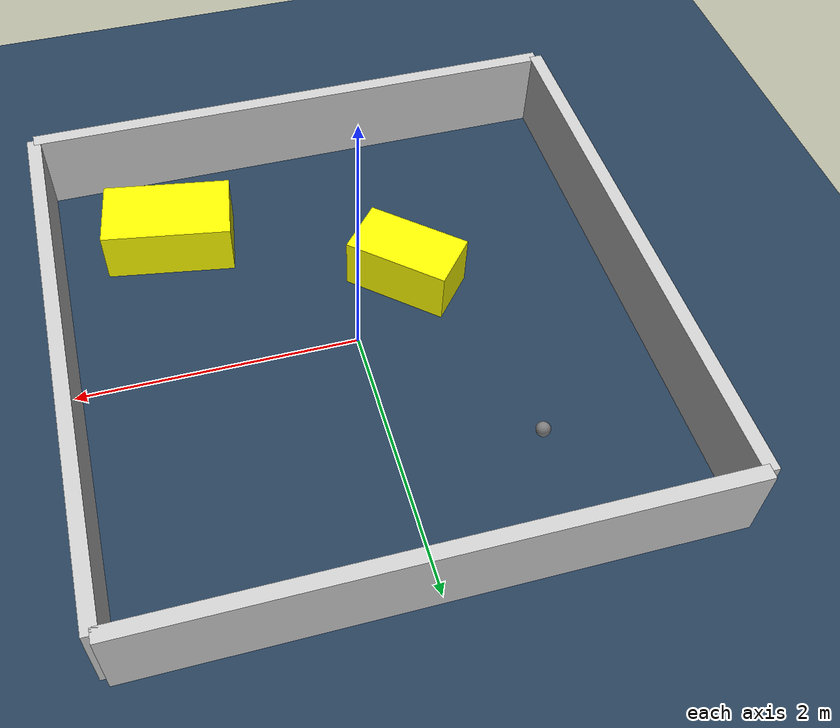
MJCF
<?xml version="1.0" ?>
<mujoco model="generated_environment">
  <option timestep="0.01" integrator="RK4" cone="elliptic"/>
  <default>
    <geom density="1"/>
  </default>
  <asset>
    <texture builtin="gradient" height="3072" rgb1="0.3 0.5 0.7" rgb2="0 0 0" type="skybox" width="512"/>
    <texture builtin="checker" height="300" mark="edge" markrgb="0.8 0.8 0.8" name="groundplane" rgb1="0.2 0.3 0.4" rgb2="0.1 0.2 0.3" type="2d" width="300"/>
    <material name="groundplane" reflectance="0.2" texrepeat="5 5" texture="groundplane" texuniform="true"/>
    <material name="robot" rgba="0.0 1.0 0.0 1"/>
  </asset>
  <worldbody>
    <light dir="0 0 -1" directional="true" pos="0 0 1.5"/>
    <geom condim="4" friction="1.0 0.005 0.001" material="groundplane" name="floor" size="0 0 0.05" type="plane"/>
    <body name="walls">
      <geom name="wall_1" condim="4" pos="-2.0 0.0 0.3" rgba="0.800000011920929 0.800000011920929 0.800000011920929 1.0" size="0.05 2.0 0.3" type="box"/>
      <geom name="wall_2" condim="4" pos="2.0 0.0 0.3" rgba="0.800000011920929 0.800000011920929 0.800000011920929 1.0" size="0.05 2.0 0.3" type="box"/>
      <geom name="wall_3" condim="4" pos="0.0 -2.0 0.3" rgba="0.800000011920929 0.800000011920929 0.800000011920929 1.0" size="2.0 0.05 0.3" type="box"/>
      <geom name="wall_4" condim="4" pos="0.0 2.0 0.3" rgba="0.800000011920929 0.800000011920929 0.800000011920929 1.0" size="2.0 0.05 0.3" type="box"/>
    </body>
    <body name="robot">
      <joint name="joint_x" type="slide" pos="0 0 0" axis="1 0 0"/>
      <joint name="joint_y" type="slide" pos="0 0 0" axis="0 1 0"/>
      <geom name="robot" type="sphere" pos="-0.9360521513040458 1.1516435175888668 0.2" size="0.05" mass="5." friction="1.0 0.005 0.0001" condim="4"/>
      <site name="sensor_ball"/>
    </body>
    <body name="obstacle_1_movable">
      <geom name="obstacle_1_movable" condim="4" pos="-0.4835685557626521 -0.465161774165314 0.2" euler="0 0 228.6793030600944" friction="1.0 0.005 0.001" rgba="1 1 0 1" size="0.2100275314978718 0.38265581333404075 0.2" type="box" mass="0.1"/>
      <joint type="free"/>
    </body>
    <body name="obstacle_2_movable">
      <geom name="obstacle_2_movable" condim="4" pos="1.1404109552664052 -1.2372608512001735 0.2" euler="0 0 170.75727870078012" friction="1.0 0.005 0.001" rgba="1 1 0 1" size="0.46641093846953335 0.26526252123880006 0.2" type="box" mass="0.1"/>
      <joint type="free"/>
    </body>
  </worldbody>
  <actuator>
    <motor name="actuator_x" joint="joint_x" gear="1" ctrlrange="-1 1"/>
    <motor name="actuator_y" joint="joint_y" gear="1" ctrlrange="-1 1"/>
  </actuator>
</mujoco>
